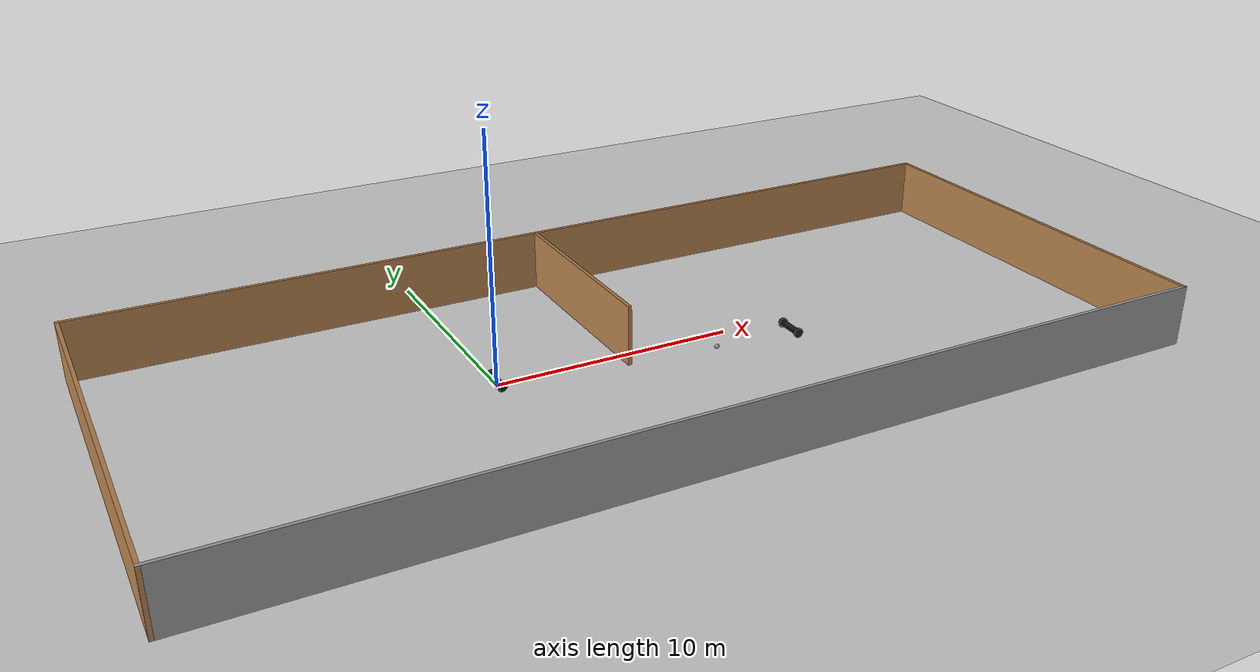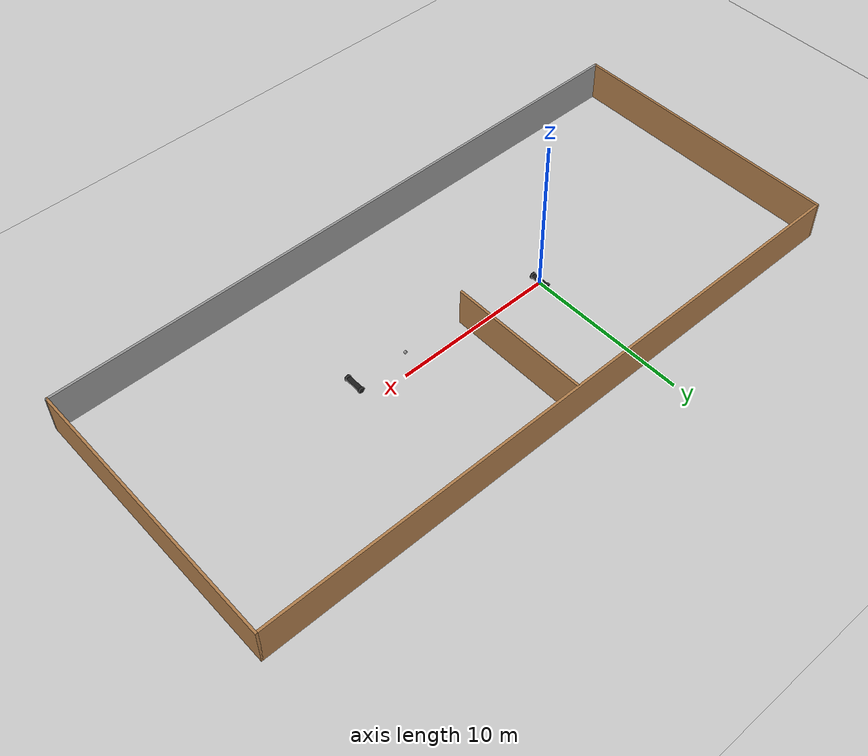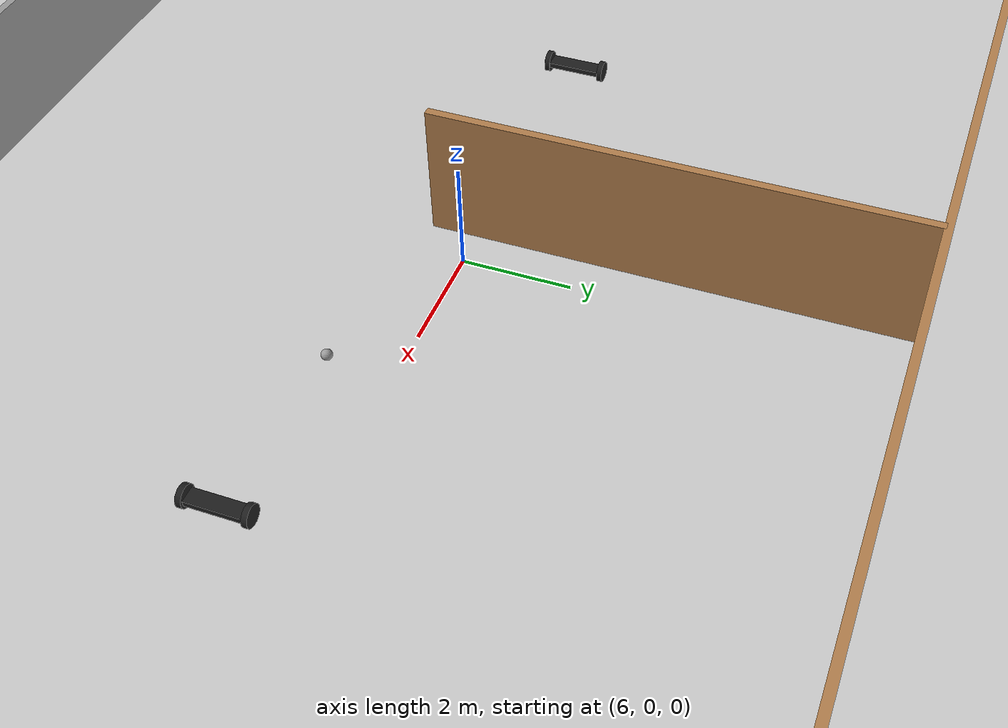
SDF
<sdf version="1.6">
 <world name="default">
  <plugin name="hello" filename="libhello.so"/>
  <light name="sun" type="directional">
   <pose>0 0 10 0 -0 0</pose>
   <diffuse>0.8 0.8 0.8 1</diffuse>
   <specular>0.2 0.2 0.2 1</specular>
   <attenuation>
    <range>1000</range>
    <constant>0.9</constant>
    <linear>0.01</linear>
    <quadratic>0.001</quadratic>
   </attenuation>
   <direction>-0.5 0.1 -0.9</direction>
  </light>
  <model name="ground_plane">
   <static>1</static>
   <link name="link">
    <collision name="collision">
     <geometry><plane><normal>0 0 1</normal><size>100 100</size></plane></geometry>
     <surface><friction><ode><mu>100</mu><mu2>50</mu2></ode></friction></surface>
    </collision>
    <visual name="visual">
     <cast_shadows>0</cast_shadows>
     <geometry><plane><normal>0 0 1</normal><size>100 100</size></plane></geometry>
     <material>
      <script><uri>file://media/materials/scripts/gazebo.material</uri><name>Gazebo/Grey</name></script>
     </material>
    </visual>
   </link>
  </model>
  <gravity>0 0 -9.8</gravity>
  <magnetic_field>6e-06 2.3e-05 -4.2e-05</magnetic_field>
  <atmosphere type="adiabatic"/>
  <physics name="default_physics" default="0" type="ode">
   <max_step_size>0.001</max_step_size>
   <real_time_factor>1</real_time_factor>
   <real_time_update_rate>1000</real_time_update_rate>
  </physics>
  <scene><ambient>0.4 0.4 0.4 1</ambient><background>0.7 0.7 0.7 1</background><shadows>1</shadows></scene>
  <spherical_coordinates>
   <surface_model>EARTH_WGS84</surface_model>
   <latitude_deg>0</latitude_deg>
   <longitude_deg>0</longitude_deg>
   <elevation>0</elevation>
   <heading_deg>0</heading_deg>
  </spherical_coordinates>
  <model name="twowheelsrobotModel">
   <link name="link_0">
    <pose>0 0 0.2 0 -0 0</pose>
    <inertial>
     <mass>1</mass>
     <inertia>
      <ixx>0.166667</ixx>
      <ixy>0</ixy>
      <ixz>0</ixz>
      <iyy>0.166667</iyy>
      <iyz>0</iyz>
      <izz>0.166667</izz>
     </inertia>
    </inertial>
    <visual name="visual">
     <geometry><box><size>0.3 1 0.1</size></box></geometry>
     <material>
      <script><uri>file://media/materials/scripts/gazebo.material</uri><name>Gazebo/FlatBlack</name></script>
     </material>
    </visual>
    <collision name="collision">
     <geometry><box><size>0.3 1 0.1</size></box></geometry>
     <surface>
      <friction>
       <ode><mu>1</mu><mu2>1</mu2><fdir1>0 0 0</fdir1><slip1>0</slip1><slip2>0</slip2></ode>
       <torsional>
        <coefficient>1</coefficient>
        <patch_radius>0</patch_radius>
        <surface_radius>0</surface_radius>
        <use_patch_radius>1</use_patch_radius>
        <ode><slip>0</slip></ode>
       </torsional>
      </friction>
      <bounce><restitution_coefficient>0</restitution_coefficient><threshold>1e+06</threshold></bounce>
      <contact>
       <collide_without_contact>0</collide_without_contact>
       <collide_without_contact_bitmask>1</collide_without_contact_bitmask>
       <collide_bitmask>1</collide_bitmask>
       <ode>
        <soft_cfm>0</soft_cfm>
        <soft_erp>0.2</soft_erp>
        <kp>1e+13</kp>
        <kd>1</kd>
        <max_vel>0.01</max_vel>
        <min_depth>0</min_depth>
       </ode>
       <bullet>
        <split_impulse>1</split_impulse>
        <split_impulse_penetration_threshold>-0.01</split_impulse_penetration_threshold>
        <soft_cfm>0</soft_cfm>
        <soft_erp>0.2</soft_erp>
        <kp>1e+13</kp>
        <kd>1</kd>
       </bullet>
      </contact>
     </surface>
    </collision>
   </link>
   <link name="link_1">
    <pose>0 -0.550019 0.2 1.5707 -0 0</pose>
    <inertial>
     <mass>1</mass>
     <inertia><ixx>0.145833</ixx><ixy>0</ixy><ixz>0</ixz><iyy>0.145833</iyy><iyz>0</iyz><izz>0.125</izz></inertia>
    </inertial>
    <visual name="visual">
     <geometry><cylinder><radius>0.2</radius><length>0.1</length></cylinder></geometry>
     <material>
      <script><uri>file://media/materials/scripts/gazebo.material</uri><name>Gazebo/FlatBlack</name></script>
     </material>
    </visual>
    <collision name="collision">
     <geometry><cylinder><radius>0.2</radius><length>0.1</length></cylinder></geometry>
     <surface>
      <friction>
       <ode><mu>1</mu><mu2>1</mu2><fdir1>0 0 0</fdir1><slip1>0</slip1><slip2>0</slip2></ode>
       <torsional>
        <coefficient>1</coefficient>
        <patch_radius>0</patch_radius>
        <surface_radius>0</surface_radius>
        <use_patch_radius>1</use_patch_radius>
        <ode><slip>0</slip></ode>
       </torsional>
      </friction>
      <bounce><restitution_coefficient>0</restitution_coefficient><threshold>1e+06</threshold></bounce>
      <contact>
       <collide_without_contact>0</collide_without_contact>
       <collide_without_contact_bitmask>1</collide_without_contact_bitmask>
       <collide_bitmask>1</collide_bitmask>
       <ode>
        <soft_cfm>0</soft_cfm>
        <soft_erp>0.2</soft_erp>
        <kp>1e+13</kp>
        <kd>1</kd>
        <max_vel>0.01</max_vel>
        <min_depth>0</min_depth>
       </ode>
       <bullet>
        <split_impulse>1</split_impulse>
        <split_impulse_penetration_threshold>-0.01</split_impulse_penetration_threshold>
        <soft_cfm>0</soft_cfm>
        <soft_erp>0.2</soft_erp>
        <kp>1e+13</kp>
        <kd>1</kd>
       </bullet>
      </contact>
     </surface>
    </collision>
   </link>
   <link name="link_1_clone">
    <pose>0 0.550019 0.2 1.5707 -0 0</pose>
    <inertial>
     <mass>1</mass>
     <inertia><ixx>0.145833</ixx><ixy>0</ixy><ixz>0</ixz><iyy>0.145833</iyy><iyz>0</iyz><izz>0.125</izz></inertia>
    </inertial>
    <visual name="visual">
     <geometry><cylinder><radius>0.2</radius><length>0.1</length></cylinder></geometry>
     <material>
      <script><uri>file://media/materials/scripts/gazebo.material</uri><name>Gazebo/FlatBlack</name></script>
     </material>
    </visual>
    <collision name="collision">
     <geometry><cylinder><radius>0.2</radius><length>0.1</length></cylinder></geometry>
     <surface>
      <friction>
       <ode><mu>1</mu><mu2>1</mu2><fdir1>0 0 0</fdir1><slip1>0</slip1><slip2>0</slip2></ode>
       <torsional>
        <coefficient>1</coefficient>
        <patch_radius>0</patch_radius>
        <surface_radius>0</surface_radius>
        <use_patch_radius>1</use_patch_radius>
        <ode><slip>0</slip></ode>
       </torsional>
      </friction>
      <bounce><restitution_coefficient>0</restitution_coefficient><threshold>1e+06</threshold></bounce>
      <contact>
       <collide_without_contact>0</collide_without_contact>
       <collide_without_contact_bitmask>1</collide_without_contact_bitmask>
       <collide_bitmask>1</collide_bitmask>
       <ode>
        <soft_cfm>0</soft_cfm>
        <soft_erp>0.2</soft_erp>
        <kp>1e+13</kp>
        <kd>1</kd>
        <max_vel>0.01</max_vel>
        <min_depth>0</min_depth>
       </ode>
       <bullet>
        <split_impulse>1</split_impulse>
        <split_impulse_penetration_threshold>-0.01</split_impulse_penetration_threshold>
        <soft_cfm>0</soft_cfm>
        <soft_erp>0.2</soft_erp>
        <kp>1e+13</kp>
        <kd>1</kd>
       </bullet>
      </contact>
     </surface>
    </collision>
   </link>
   <joint name="link_0_JOINT_0" type="revolute">
    <parent>link_0</parent>
    <child>link_1</child>
    <axis>
     <xyz>0 0 1</xyz>
     <use_parent_model_frame>0</use_parent_model_frame>
     <limit>
      <lower>-1.79769e+308</lower>
      <upper>1.79769e+308</upper>
      <effort>-1</effort>
      <velocity>-1</velocity>
     </limit>
     <dynamics>
      <spring_reference>0</spring_reference>
      <spring_stiffness>0</spring_stiffness>
      <damping>0</damping>
     </dynamics>
    </axis>
    <physics>
     <ode><limit><cfm>0</cfm><erp>0.2</erp></limit><suspension><cfm>0</cfm><erp>0.2</erp></suspension></ode>
    </physics>
   </joint>
   <joint name="link_0_JOINT_1" type="revolute">
    <parent>link_0</parent>
    <child>link_1_clone</child>
    <axis>
     <xyz>0 0 1</xyz>
     <use_parent_model_frame>0</use_parent_model_frame>
     <limit>
      <lower>-1.79769e+308</lower>
      <upper>1.79769e+308</upper>
      <effort>-1</effort>
      <velocity>-1</velocity>
     </limit>
     <dynamics>
      <spring_reference>0</spring_reference>
      <spring_stiffness>0</spring_stiffness>
      <damping>0</damping>
     </dynamics>
    </axis>
    <physics>
     <ode><limit><cfm>0</cfm><erp>0.2</erp></limit><suspension><cfm>0</cfm><erp>0.2</erp></suspension></ode>
    </physics>
   </joint>
   <static>0</static>
   <pose>0.010158 0.010132 5e-06 0 -0 0</pose>
  </model>
  <model name="wall">
   <pose>5.5867 -0.761925 0 0 -0 0</pose>
   <link name="Wall_0">
    <collision name="Wall_0_Collision">
     <geometry><box><size>17.5 0.15 2.5</size></box></geometry>
     <pose>0 0 1.25 0 -0 0</pose>
    </collision>
    <visual name="Wall_0_Visual">
     <pose>0 0 1.25 0 -0 0</pose>
     <geometry><box><size>17.5 0.15 2.5</size></box></geometry>
     <material>
      <script><uri>file://media/materials/scripts/gazebo.material</uri><name>Gazebo/Wood</name></script>
      <ambient>1 1 1 1</ambient>
     </material>
     <meta><layer>0</layer></meta>
    </visual>
    <pose>-19.8 0 0 0 -0 1.5708</pose>
   </link>
   <link name="Wall_1">
    <collision name="Wall_1_Collision">
     <geometry><box><size>39.75 0.15 2.5</size></box></geometry>
     <pose>0 0 1.25 0 -0 0</pose>
    </collision>
    <visual name="Wall_1_Visual">
     <pose>0 0 1.25 0 -0 0</pose>
     <geometry><box><size>39.75 0.15 2.5</size></box></geometry>
     <material>
      <script><uri>file://media/materials/scripts/gazebo.material</uri><name>Gazebo/Wood</name></script>
      <ambient>1 1 1 1</ambient>
     </material>
     <meta><layer>0</layer></meta>
    </visual>
    <pose>0 8.675 0 0 -0 0</pose>
   </link>
   <link name="Wall_2">
    <collision name="Wall_2_Collision">
     <geometry><box><size>17.5 0.15 2.5</size></box></geometry>
     <pose>0 0 1.25 0 -0 0</pose>
    </collision>
    <visual name="Wall_2_Visual">
     <pose>0 0 1.25 0 -0 0</pose>
     <geometry><box><size>17.5 0.15 2.5</size></box></geometry>
     <material>
      <script><uri>file://media/materials/scripts/gazebo.material</uri><name>Gazebo/Wood</name></script>
      <ambient>1 1 1 1</ambient>
     </material>
     <meta><layer>0</layer></meta>
    </visual>
    <pose>19.8 0 0 0 0 -1.5708</pose>
   </link>
   <link name="Wall_3">
    <collision name="Wall_3_Collision">
     <geometry><box><size>39.75 0.15 2.5</size></box></geometry>
     <pose>0 0 1.25 0 -0 0</pose>
    </collision>
    <visual name="Wall_3_Visual">
     <pose>0 0 1.25 0 -0 0</pose>
     <geometry><box><size>39.75 0.15 2.5</size></box></geometry>
     <material>
      <script><uri>file://media/materials/scripts/gazebo.material</uri><name>Gazebo/Grey</name></script>
      <ambient>1 1 1 1</ambient>
     </material>
     <meta><layer>0</layer></meta>
    </visual>
    <pose>0 -8.675 0 0 -0 3.14159</pose>
   </link>
   <link name="Wall_5">
    <collision name="Wall_5_Collision">
     <geometry><box><size>8.75 0.15 2.5</size></box></geometry>
     <pose>0 0 1.25 0 -0 0</pose>
    </collision>
    <visual name="Wall_5_Visual">
     <pose>0 0 1.25 0 -0 0</pose>
     <geometry><box><size>8.75 0.15 2.5</size></box></geometry>
     <material>
      <script><uri>file://media/materials/scripts/gazebo.material</uri><name>Gazebo/Wood</name></script>
      <ambient>0.435294 0.796078 0.67451 1</ambient>
     </material>
     <meta><layer>0</layer></meta>
    </visual>
    <pose>-0.352 4.267 0 0 0 -1.5708</pose>
   </link>
   <static>1</static>
  </model>
  <model name="twowheelsrobotModel_0">
   <link name="link_0">
    <pose>0 0 0.2 0 -0 0</pose>
    <inertial>
     <mass>1</mass>
     <inertia>
      <ixx>0.166667</ixx>
      <ixy>0</ixy>
      <ixz>0</ixz>
      <iyy>0.166667</iyy>
      <iyz>0</iyz>
      <izz>0.166667</izz>
     </inertia>
    </inertial>
    <visual name="visual">
     <geometry><box><size>0.3 1 0.1</size></box></geometry>
     <material>
      <script><uri>file://media/materials/scripts/gazebo.material</uri><name>Gazebo/FlatBlack</name></script>
     </material>
    </visual>
    <collision name="collision">
     <geometry><box><size>0.3 1 0.1</size></box></geometry>
     <surface>
      <friction>
       <ode><mu>1</mu><mu2>1</mu2><fdir1>0 0 0</fdir1><slip1>0</slip1><slip2>0</slip2></ode>
       <torsional>
        <coefficient>1</coefficient>
        <patch_radius>0</patch_radius>
        <surface_radius>0</surface_radius>
        <use_patch_radius>1</use_patch_radius>
        <ode><slip>0</slip></ode>
       </torsional>
      </friction>
      <bounce><restitution_coefficient>0</restitution_coefficient><threshold>1e+06</threshold></bounce>
      <contact>
       <collide_without_contact>0</collide_without_contact>
       <collide_without_contact_bitmask>1</collide_without_contact_bitmask>
       <collide_bitmask>1</collide_bitmask>
       <ode>
        <soft_cfm>0</soft_cfm>
        <soft_erp>0.2</soft_erp>
        <kp>1e+13</kp>
        <kd>1</kd>
        <max_vel>0.01</max_vel>
        <min_depth>0</min_depth>
       </ode>
       <bullet>
        <split_impulse>1</split_impulse>
        <split_impulse_penetration_threshold>-0.01</split_impulse_penetration_threshold>
        <soft_cfm>0</soft_cfm>
        <soft_erp>0.2</soft_erp>
        <kp>1e+13</kp>
        <kd>1</kd>
       </bullet>
      </contact>
     </surface>
    </collision>
   </link>
   <link name="link_1">
    <pose>0 -0.550019 0.2 1.5707 -0 0</pose>
    <inertial>
     <mass>1</mass>
     <inertia><ixx>0.145833</ixx><ixy>0</ixy><ixz>0</ixz><iyy>0.145833</iyy><iyz>0</iyz><izz>0.125</izz></inertia>
    </inertial>
    <visual name="visual">
     <geometry><cylinder><radius>0.2</radius><length>0.1</length></cylinder></geometry>
     <material>
      <script><uri>file://media/materials/scripts/gazebo.material</uri><name>Gazebo/FlatBlack</name></script>
     </material>
    </visual>
    <collision name="collision">
     <geometry><cylinder><radius>0.2</radius><length>0.1</length></cylinder></geometry>
     <surface>
      <friction>
       <ode><mu>1</mu><mu2>1</mu2><fdir1>0 0 0</fdir1><slip1>0</slip1><slip2>0</slip2></ode>
       <torsional>
        <coefficient>1</coefficient>
        <patch_radius>0</patch_radius>
        <surface_radius>0</surface_radius>
        <use_patch_radius>1</use_patch_radius>
        <ode><slip>0</slip></ode>
       </torsional>
      </friction>
      <bounce><restitution_coefficient>0</restitution_coefficient><threshold>1e+06</threshold></bounce>
      <contact>
       <collide_without_contact>0</collide_without_contact>
       <collide_without_contact_bitmask>1</collide_without_contact_bitmask>
       <collide_bitmask>1</collide_bitmask>
       <ode>
        <soft_cfm>0</soft_cfm>
        <soft_erp>0.2</soft_erp>
        <kp>1e+13</kp>
        <kd>1</kd>
        <max_vel>0.01</max_vel>
        <min_depth>0</min_depth>
       </ode>
       <bullet>
        <split_impulse>1</split_impulse>
        <split_impulse_penetration_threshold>-0.01</split_impulse_penetration_threshold>
        <soft_cfm>0</soft_cfm>
        <soft_erp>0.2</soft_erp>
        <kp>1e+13</kp>
        <kd>1</kd>
       </bullet>
      </contact>
     </surface>
    </collision>
   </link>
   <link name="link_1_clone">
    <pose>0 0.550019 0.2 1.5707 -0 0</pose>
    <inertial>
     <mass>1</mass>
     <inertia><ixx>0.145833</ixx><ixy>0</ixy><ixz>0</ixz><iyy>0.145833</iyy><iyz>0</iyz><izz>0.125</izz></inertia>
    </inertial>
    <visual name="visual">
     <geometry><cylinder><radius>0.2</radius><length>0.1</length></cylinder></geometry>
     <material>
      <script><uri>file://media/materials/scripts/gazebo.material</uri><name>Gazebo/FlatBlack</name></script>
     </material>
    </visual>
    <collision name="collision">
     <geometry><cylinder><radius>0.2</radius><length>0.1</length></cylinder></geometry>
     <surface>
      <friction>
       <ode><mu>1</mu><mu2>1</mu2><fdir1>0 0 0</fdir1><slip1>0</slip1><slip2>0</slip2></ode>
       <torsional>
        <coefficient>1</coefficient>
        <patch_radius>0</patch_radius>
        <surface_radius>0</surface_radius>
        <use_patch_radius>1</use_patch_radius>
        <ode><slip>0</slip></ode>
       </torsional>
      </friction>
      <bounce><restitution_coefficient>0</restitution_coefficient><threshold>1e+06</threshold></bounce>
      <contact>
       <collide_without_contact>0</collide_without_contact>
       <collide_without_contact_bitmask>1</collide_without_contact_bitmask>
       <collide_bitmask>1</collide_bitmask>
       <ode>
        <soft_cfm>0</soft_cfm>
        <soft_erp>0.2</soft_erp>
        <kp>1e+13</kp>
        <kd>1</kd>
        <max_vel>0.01</max_vel>
        <min_depth>0</min_depth>
       </ode>
       <bullet>
        <split_impulse>1</split_impulse>
        <split_impulse_penetration_threshold>-0.01</split_impulse_penetration_threshold>
        <soft_cfm>0</soft_cfm>
        <soft_erp>0.2</soft_erp>
        <kp>1e+13</kp>
        <kd>1</kd>
       </bullet>
      </contact>
     </surface>
    </collision>
   </link>
   <joint name="link_0_JOINT_0" type="revolute">
    <parent>link_0</parent>
    <child>link_1</child>
    <axis>
     <xyz>0 0 1</xyz>
     <use_parent_model_frame>0</use_parent_model_frame>
     <limit>
      <lower>-1.79769e+308</lower>
      <upper>1.79769e+308</upper>
      <effort>-1</effort>
      <velocity>-1</velocity>
     </limit>
     <dynamics>
      <spring_reference>0</spring_reference>
      <spring_stiffness>0</spring_stiffness>
      <damping>0</damping>
     </dynamics>
    </axis>
    <physics>
     <ode><limit><cfm>0</cfm><erp>0.2</erp></limit><suspension><cfm>0</cfm><erp>0.2</erp></suspension></ode>
    </physics>
   </joint>
   <joint name="link_0_JOINT_1" type="revolute">
    <parent>link_0</parent>
    <child>link_1_clone</child>
    <axis>
     <xyz>0 0 1</xyz>
     <use_parent_model_frame>0</use_parent_model_frame>
     <limit>
      <lower>-1.79769e+308</lower>
      <upper>1.79769e+308</upper>
      <effort>-1</effort>
      <velocity>-1</velocity>
     </limit>
     <dynamics>
      <spring_reference>0</spring_reference>
      <spring_stiffness>0</spring_stiffness>
      <damping>0</damping>
     </dynamics>
    </axis>
    <physics>
     <ode><limit><cfm>0</cfm><erp>0.2</erp></limit><suspension><cfm>0</cfm><erp>0.2</erp></suspension></ode>
    </physics>
   </joint>
   <static>0</static>
   <pose>12.4104 -1.30711 5e-06 0 -0 0</pose>
  </model>
  <model name="my_ball">
   <link name="link_0">
    <inertial>
     <mass>1</mass>
     <inertia><ixx>0.1</ixx><ixy>0</ixy><ixz>0</ixz><iyy>0.1</iyy><iyz>0</iyz><izz>0.1</izz></inertia>
    </inertial>
    <visual name="visual">
     <geometry><sphere><radius>0.1</radius></sphere></geometry>
     <material>
      <lighting>1</lighting>
      <script><uri>file://media/materials/scripts/gazebo.material</uri><name>Gazebo/Grey</name></script>
      <shader type="pixel"><normal_map>__default__</normal_map></shader>
      <ambient>1 1 1 1</ambient>
      <diffuse>1 1 1 1</diffuse>
      <specular>1 1 1 1</specular>
      <emissive>1 1 1 1</emissive>
     </material>
    </visual>
    <collision name="collision">
     <geometry><sphere><radius>0.1</radius></sphere></geometry>
     <surface>
      <friction>
       <ode><mu>1</mu><mu2>1</mu2><fdir1>0 0 0</fdir1><slip1>0</slip1><slip2>0</slip2></ode>
       <torsional>
        <coefficient>1</coefficient>
        <patch_radius>0</patch_radius>
        <surface_radius>0</surface_radius>
        <use_patch_radius>1</use_patch_radius>
        <ode><slip>0</slip></ode>
       </torsional>
      </friction>
      <bounce><restitution_coefficient>0</restitution_coefficient><threshold>1e+06</threshold></bounce>
      <contact>
       <collide_without_contact>0</collide_without_contact>
       <collide_without_contact_bitmask>1</collide_without_contact_bitmask>
       <collide_bitmask>1</collide_bitmask>
       <ode>
        <soft_cfm>0</soft_cfm>
        <soft_erp>0.2</soft_erp>
        <kp>1e+13</kp>
        <kd>1</kd>
        <max_vel>0.01</max_vel>
        <min_depth>0</min_depth>
       </ode>
       <bullet>
        <split_impulse>1</split_impulse>
        <split_impulse_penetration_threshold>-0.01</split_impulse_penetration_threshold>
        <soft_cfm>0</soft_cfm>
        <soft_erp>0.2</soft_erp>
        <kp>1e+13</kp>
        <kd>1</kd>
       </bullet>
      </contact>
     </surface>
    </collision>
   </link>
   <static>0</static>
   <pose>8.96837 -1.20087 0.1 0 -0 0</pose>
  </model>
  <plugin filename="libcollision_map_creator.so" name="collision_map_creator"/>
 </world>
</sdf>
